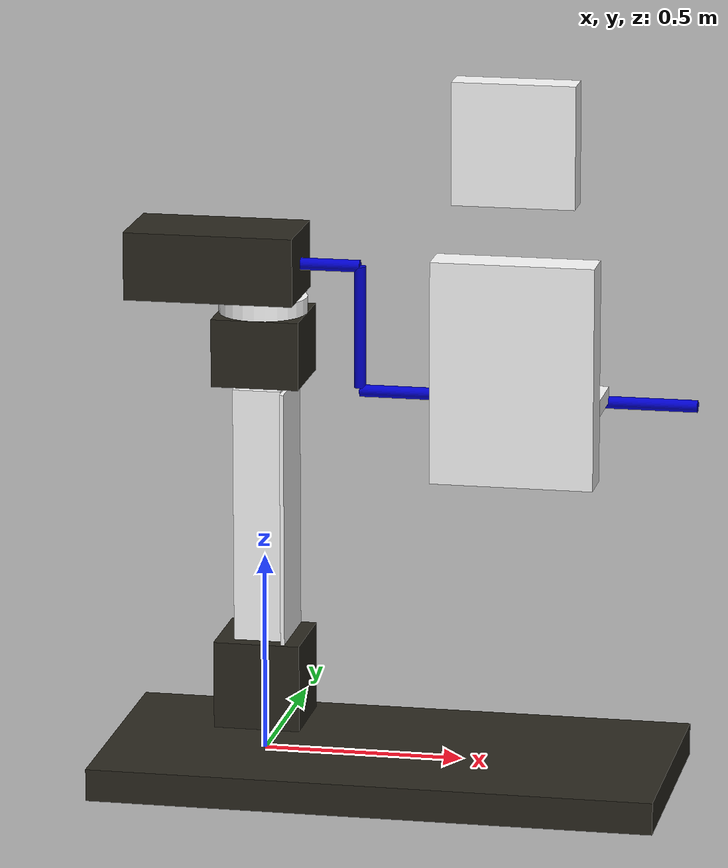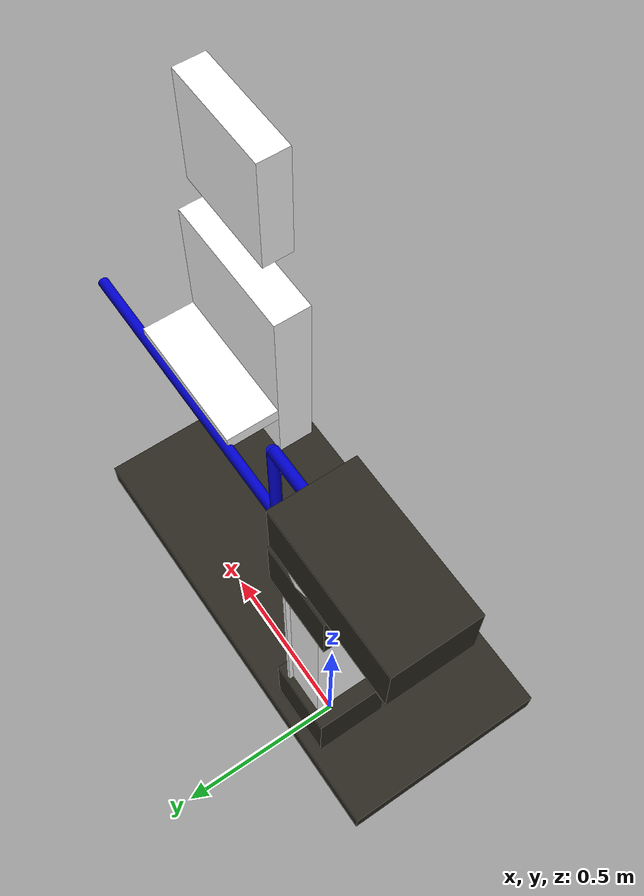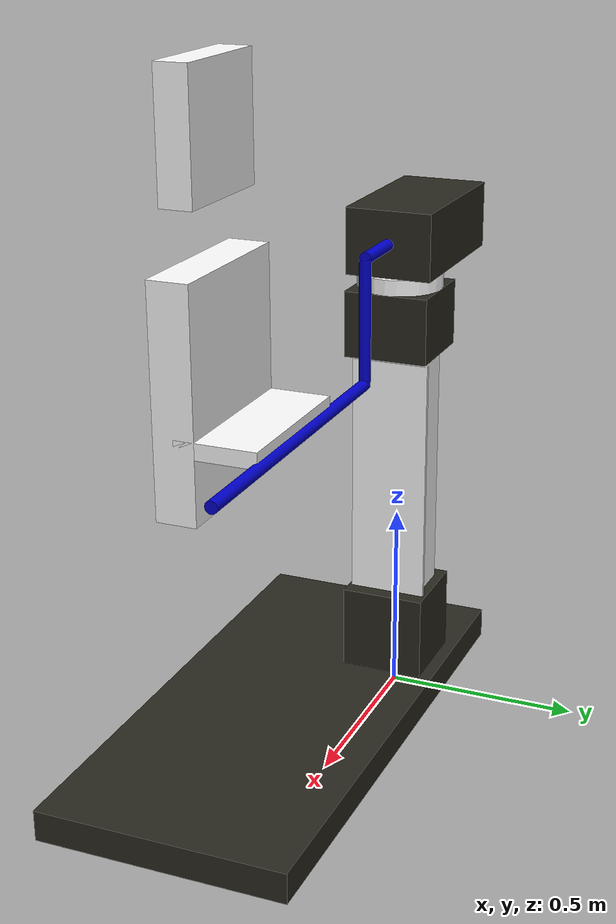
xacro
<?xml version="1.0"?>
<robot name="robot" xmlns:xacro="http://www.ros.org/wiki/xacro">

  <material name="blue">
    <color rgba="0 0 0.8 1"/>
  </material>

  <material name="red">
    <color rgba="0.7 0 0 1"/>
  </material>

  <material name="white">
    <color rgba="1 1 1 1"/>
  </material>

  <material name="brown">
    <color rgba="0.163 0.155 0.120 1"/>
  </material>

  <material name="oak">
    <color rgba="0.84375 0.70703125 0.53515625 1"/>
  </material>

  <!--define initial joint configurations-->
  <ros2_control name="GazeboSystem" type="system">
    <hardware>
      <plugin>gazebo_ros2_control/GazeboSystem</plugin>
    </hardware>
      <joint name="upper_cylinder_upper_motor_joint"> <!-- rotation joint -->
        <command_interface name="position"/>
        <command_interface name="velocity"/>
        <command_interface name="effort"/>
        <state_interface name="position">
          <param name="initial_value">0</param>
        </state_interface>
        <state_interface name="velocity"/>
        <state_interface name="effort"/>
      </joint>

      <joint name="column_outside_column_inside_joint"> <!-- height joint -->
        <command_interface name="position"/>
        <command_interface name="velocity"/>
        <command_interface name="effort"/>
        <state_interface name="position">
          <param name="initial_value">0</param>
        </state_interface>
        <state_interface name="velocity"/>
        <state_interface name="effort"/>
      </joint>

      <joint name="upper_motor_box_arm_joint">  <!-- arm rotation joint -->
        <command_interface name="position"/>
        <command_interface name="velocity"/>
        <command_interface name="effort"/>
        <state_interface name="position">
          <param name="initial_value">0</param>
        </state_interface>
        <state_interface name="velocity"/>
        <state_interface name="effort"/>
      </joint>
  </ros2_control>

  <gazebo>
    <plugin filename="libgazebo_ros2_control.so" name="gazebo_ros2_control">
      <parameters>$(find gazebo_simulation)/config/controller_manager.yaml</parameters>
    </plugin>
    <plugin name="gazebo_ros_force_system" filename="libgazebo_ros_force_system.so">
    </plugin>
  </gazebo>

  <!-- The Robot Description starts here:-->
  <link name="robot_base"/>

  <joint name = "map_frame_joint" type = "fixed">
    <origin xyz="0.35575 -0.180 0"/>
    <parent link = "robot_base" />
    <child link = "frame_link" />
  </joint>

  <!-- Base frame -->
  <link name="frame_link">
    <visual>
      <origin xyz="0 0 0.040" />
      <geometry>
        <box size="1.395 0.645 0.080"/>
      </geometry>
      <material name="brown"/>
    </visual>
    <collision>
      <origin xyz="0 0 0.040" />
      <geometry>
        <box size="1.395 0.645 0.080"/>
      </geometry>
    </collision>
    <inertial>
      <xacro:property name="frame_link_mass" value="20000.0"/> <!-- specially high to stabilize-->
      <mass value="${frame_link_mass}"/>
      <origin xyz="0 0 0.040" />
      <inertia
        ixx="${frame_link_mass / 12.0 * (0.645*0.645 + 0.080*0.080)}"
        iyy="${frame_link_mass / 12.0 * (1.395*1.395 + 0.080*0.080)}"
        izz="${frame_link_mass / 12.0 * (1.395*1.395 + 0.645*0.645)}"
        ixy="0" ixz="0" iyz="0"/>
    </inertial>
  </link>

  <joint name = "frame_lower_motor_box_joint" type = "fixed">
    <origin xyz="-0.35575 0.180 0.080"/>
    <parent link = "frame_link" />
    <child link = "lower_motor_box_link" />
  </joint>

  <!-- lower motor box -->
  <link name="lower_motor_box_link">
    <visual>
      <origin xyz="0 0 0.110"/>
      <geometry>
        <box size="0.2165 0.218 0.220"/>
      </geometry>
      <material name="brown"/>
    </visual>
    <collision>
      <origin xyz="0 0 0.110"/>
      <geometry>
        <box size="0.2165 0.218 0.220"/>
      </geometry>
    </collision>
    <inertial>
      <xacro:property name="lower_motor_box_mass" value="28.0"/> <!-- mass of the lower motor box AND the outside column (see mass property of outside column for explanation) -->
      <mass value="${lower_motor_box_mass}"/>
      <origin xyz="0 0 0.110" />
      <inertia
        ixx="${lower_motor_box_mass / 12.0 * (0.218*0.218 + 0.220*0.220)}"
        iyy="${lower_motor_box_mass / 12.0 * (0.2165*0.2165 + 0.220*0.220)}"
        izz="${lower_motor_box_mass / 12.0 * (0.2165*0.2165 + 0.218*0.218)}"
        ixy="0" ixz="0" iyz="0"/>
    </inertial>
  </link>

  <joint name = "lower_motor_box_column_outside_joint" type = "fixed">
    <origin xyz="0 0 0.220"/>
    <parent link = "lower_motor_box_link" />
    <child link = "column_outside_link" />
  </joint>

  <!-- lifting_column_outside -->
  <link name="column_outside_link">
    <visual>
      <origin xyz="0.065 0 0.320"/>
      <geometry>
        <box size="0.010 0.202 0.640"/>
      </geometry>
      <material name="white"/>
    </visual>
    <collision>
      <origin xyz="0.065 0 0.320"/>
      <geometry>
        <box size="0.010 0.202 0.640"/>
      </geometry>
    </collision>
    <inertial>
      <xacro:property name="column_outside_mass" value="0.5"/>
      <mass value="${column_outside_mass}"/>
      <origin xyz="0.065 0 0.320"/>
      <inertia
        ixx="${column_outside_mass / 12.0 * (0.202*0.202 + 0.640*0.640)}"
        iyy="${column_outside_mass / 12.0 * (0.010*0.010 + 0.640*0.640)}"
        izz="${column_outside_mass / 12.0 * (0.010*0.010 + 0.202*0.202)}"
        ixy="0" ixz="0" iyz="0"/>
    </inertial>
  </link>

  <joint name = "column_outside_column_inside_joint" type = "prismatic">
    <origin xyz="0 0 0.005"/>
    <parent link = "column_outside_link" />
    <child link = "column_inside_link" />
    <axis xyz="0 0 1" />
    <dynamics damping="0.5" friction="1.1"/>
    <limit lower="0" upper="50.0" velocity="100" effort="5000"/>
  </joint>

  <!-- lifting_column_inside -->
  <link name="column_inside_link">
    <visual>
      <origin xyz="0 0 0.320"/>
      <geometry>
        <box size="0.120 0.177 0.640"/>
      </geometry>
      <material name="white"/>
    </visual>
    <collision>
      <origin xyz="0 0 0.320"/>
      <geometry>
        <box size="0.120 0.177 0.640"/>
      </geometry>
    </collision>
    <inertial>
      <xacro:property name="column_inside_mass" value="9.0"/>
      <mass value="${column_inside_mass}"/>
      <origin xyz="0 0 0.320"/>
      <inertia
        ixx="${column_inside_mass / 12.0 * (0.177*0.177 + 0.640*0.640)}"
        iyy="${column_inside_mass / 12.0 * (0.120*0.120 + 0.640*0.640)}"
        izz="${column_inside_mass / 12.0 * (0.120*0.120 + 0.177*0.177)}"
        ixy="0" ixz="0" iyz="0"/>
    </inertial>
  </link>

  <joint name = "column_inside_joint" type = "fixed">
    <origin xyz="0 0 0.650"/>
    <parent link = "column_inside_link" />
    <child link = "middle_motor_box_link" />
  </joint>

  <!-- middle motor box  -->
  <link name="middle_motor_box_link">
    <visual>
      <origin xyz="0 0 0.085"/>
      <geometry>
        <box size="0.218 0.218 0.170"/>
      </geometry>
      <material name="brown"/>
    </visual>
    <collision>
      <origin xyz="0 0 0.085"/>
      <geometry>
        <box size="0.218 0.218 0.170"/>
      </geometry>
    </collision>
    <inertial>
      <xacro:property name="middle_motor_box_mass" value="19.0"/>
      <mass value="${middle_motor_box_mass}"/>
      <origin xyz="0 0 0.085"/>
      <inertia
        ixx="${middle_motor_box_mass / 12.0 * (0.218*0.218 + 0.170*0.170)}"
        iyy="${middle_motor_box_mass / 12.0 * (0.218*0.218 + 0.170*0.170)}"
        izz="${middle_motor_box_mass / 12.0 * (0.218*0.218 + 0.218*0.218)}"
        ixy="0" ixz="0" iyz="0"/>
    </inertial>
  </link>

  <joint name = "middle_box_upper_cylinder_joint" type = "fixed">
    <origin xyz="0 0 0.170"/>
    <parent link = "middle_motor_box_link" />
    <child link = "upper_cylinder_link" />
  </joint>

  <!-- cylinder connecting upper boxes -->
  <link name="upper_cylinder_link">
    <visual>
      <origin xyz="0 0 0.020"/>
      <geometry>
        <cylinder length="0.040" radius="0.110"/>
      </geometry>
      <material name="white"/>
    </visual>
    <collision>
      <origin xyz="0 0 0.020"/>
      <geometry>
        <cylinder length="0.040" radius="0.110"/>
      </geometry>
    </collision>
    <inertial>
      <xacro:property name="upper_cylinder_mass" value="1.0"/>
      <mass value="${upper_cylinder_mass}"/>
      <origin xyz="0 0 0.020"/>
      <inertia
        ixx="${upper_cylinder_mass / 12.0 * (3*0.110*0.110 + 0.040*0.040)}"
        iyy="${upper_cylinder_mass / 12.0 * (3*0.110*0.110 + 0.040*0.040)}"
        izz="${upper_cylinder_mass / 2.0 * (0.110*0.110)}"
        ixy="0" ixz="0" iyz="0"/>
    </inertial>
  </link>

  <joint name = "upper_cylinder_upper_motor_joint" type = "continuous">
    <origin xyz="0 0 0.040"/>
    <parent link = "upper_cylinder_link" />
    <child link = "upper_motor_box_link" />
    <dynamics damping="0.5" friction="0.1"/>
    <axis xyz="0 0 1" />
  </joint>

  <!-- upper motor box -->
  <link name="upper_motor_box_link">
    <visual>
      <origin xyz="-0.11575 0 0.08475"/>
      <geometry>
        <box size="0.4215 0.223 0.1695"/>
      </geometry>
      <material name="brown"/>
    </visual>
    <collision>
      <origin xyz="-0.11575 0 0.08475"/>
      <geometry>
        <box size="0.4215 0.223 0.1695"/>
      </geometry>
    </collision>
    <inertial>
      <xacro:property name="upper_motor_box_mass" value="22.0"/>
      <mass value="${upper_motor_box_mass}"/>
      <origin xyz="-0.11575 0 0.08475"/>
      <inertia
        ixx="${upper_motor_box_mass / 12.0 * (0.223*0.223 + 0.1695*0.1695)}"
        iyy="${upper_motor_box_mass / 12.0 * (0.4215*0.4215 + 0.1695*0.1695)}"
        izz="${upper_motor_box_mass / 12.0 * (0.4215*0.4215 + 0.223*0.223)}"
        ixy="0" ixz="0" iyz="0"/>
    </inertial>
  </link>

  <joint name="upper_motor_box_arm_joint" type="continuous">
    <parent link="upper_motor_box_link"/>
    <child link="arm_first_link"/>
    <origin xyz="0.095 0 0.08475" rpy="0 -1.57079 3.1415926"/>
    <dynamics damping="0.5" friction="0.1"/>
    <axis xyz="0 0 1" rpy="0 0 0"/>
  </joint>

  <!-- arm_first_link -->
  <link name="arm_first_link">
    <visual>
      <origin xyz="0 0 0.074" rpy="0 0 0" />
      <geometry>
        <cylinder length="0.148" radius="0.015"/>
      </geometry>
      <material name="blue"/>
    </visual>
    <collision>
      <origin xyz="0 0 0.074" rpy="0 0 0" />
      <geometry>
        <cylinder length="0.148" radius="0.015"/>
      </geometry>
    </collision>
    <inertial>
      <xacro:property name="arm_first_mass" value="1.5"/>
      <mass value="${arm_first_mass}"/>
      <origin xyz="0 0 0.074" rpy="0 0 0" />
      <inertia
        ixx="${arm_first_mass / 12.0 * (3*0.015*0.015 + 0.148*0.148)}"
        iyy="${arm_first_mass / 12.0 * (3*0.015*0.015 + 0.148*0.148)}"
        izz="${arm_first_mass / 2.0 * (0.015*0.015)}"
        ixy="0" ixz="0" iyz="0"/>
    </inertial>
  </link>

  <joint name="arm_first_joint" type="fixed">
    <parent link="arm_first_link"/>
    <child link="arm_second_link"/>
    <origin xyz="0 0 0.148" rpy="0 -1.5708 0"/>
  </joint>

  <!-- arm_second_link -->
  <link name="arm_second_link">
    <visual>
      <origin xyz="0 0 0.153" rpy="0 0 0"/>
      <geometry>
        <cylinder length="0.306" radius="0.015"/>
      </geometry>
      <material name="blue"/>
    </visual>
    <collision>
      <origin xyz="0 0 0.153" rpy="0 0 0"/>
      <geometry>
        <cylinder length="0.306" radius="0.015"/>
      </geometry>
    </collision>
    <inertial>
      <xacro:property name="arm_second_mass" value="0.5"/>
      <mass value="${arm_second_mass}"/>
      <origin xyz="0 0 0.153" rpy="0 0 0"/>
      <inertia
        ixx="${arm_second_mass / 12.0 * (3*0.015*0.015 + 0.306*0.306)}"
        iyy="${arm_second_mass / 12.0 * (3*0.015*0.015 + 0.306*0.306)}"
        izz="${arm_second_mass / 2.0 * (0.015*0.015)}"
        ixy="0" ixz="0" iyz="0"/>
    </inertial>
  </link>

  <joint name="arm_second_joint" type="fixed">
    <parent link="arm_second_link"/>
    <child link="arm_third_link"/>
    <origin xyz="0 0 0.314" rpy="0 1.5708 0"/>
  </joint>

  <!-- arm_third_link -->
  <link name="arm_third_link">
    <visual>
      <origin xyz="0 0 0.419"/>
      <geometry>
        <cylinder length="0.838" radius="0.015"/>
      </geometry>
      <material name="blue"/>
    </visual>
    <collision>
      <origin xyz="0 0 0.419"/>
      <geometry>
        <cylinder length="0.838" radius="0.015"/>
      </geometry>
    </collision>
    <inertial>
      <xacro:property name="arm_third_mass" value="2.5"/>
      <mass value="${arm_third_mass}"/>
      <origin xyz="0 0 0.419"/>
      <inertia
        ixx="${arm_third_mass / 12.0 * (3*0.015*0.015 + 0.838*0.838)}"
        iyy="${arm_third_mass / 12.0 * (3*0.015*0.015 + 0.838*0.838)}"
        izz="${arm_third_mass / 2.0 * (0.015*0.015)}"
        ixy="0" ixz="0" iyz="0"/>
    </inertial>
  </link>

  <joint name="robot_Body_joint" type="continuous">
    <parent link="arm_third_link"/>
    <child link="BodyArms_link"/>
    <origin xyz="0.015 0 0.419" rpy="0 1.5708 0"/>
    <dynamics damping="0.5" friction="0.1"/>
    <axis xyz="1 0 0" />
  </joint>

  <!-- BodyArms -->
  <link name="BodyArms_link">
    <visual>
      <origin xyz="0 0.100 0.005"/>
      <geometry>
        <box size="0.400 0.200 0.040"/>
      </geometry>
      <material name="white"/>
    </visual>
    <collision>
      <origin xyz="0 0.100 0.005"/>
      <geometry>
        <box size="0.400 0.200 0.040"/>
      </geometry>
    </collision>
    <inertial>
      <xacro:property name="body_arms_mass" value="9.0"/>
      <mass value="${body_arms_mass}"/>
      <origin xyz="0 0.100 0.005"/>
      <inertia
        ixx="${body_arms_mass / 12.0 * (0.200*0.200 + 0.040*0.040)}"
        iyy="${body_arms_mass / 12.0 * (0.400*0.400 + 0.040*0.040)}"
        izz="${body_arms_mass / 12.0 * (0.400*0.400 + 0.200*0.200)}"
        ixy="0" ixz="0" iyz="0"/>
    </inertial>
  </link>

  <joint name = "BodyArms_UpperBody_joint" type = "fixed">
    <origin xyz="0 0.200 -0.100"/>
    <parent link = "BodyArms_link" />
    <child link = "UpperBody_link" />
  </joint>

  <!-- UpperBody -->
  <link name="UpperBody_link">
    <visual>
      <origin xyz="0 0 0.20"/>
      <geometry>
        <box size="0.400 0.100 0.550"/>
      </geometry>
      <material name="white"/>
    </visual>
    <collision>
      <origin xyz="0 0 0.20"/>
      <geometry>
        <box size="0.400 0.100 0.550"/>
      </geometry>
    </collision>
    <inertial>
      <xacro:property name="upper_body_mass" value="50.0"/>
      <mass value="${upper_body_mass}"/>
      <origin xyz="0 0 0.20"/>
      <inertia
        ixx="${upper_body_mass / 12.0 * (0.100*0.100 + 0.550*0.550)}"
        iyy="${upper_body_mass / 12.0 * (0.400*0.400 + 0.550*0.550)}"
        izz="${upper_body_mass / 12.0 * (0.400*0.400 + 0.100*0.100)}"
        ixy="0" ixz="0" iyz="0"/>
    </inertial>
  </link>

  <joint name="Upper_Lower_Body_joint" type="revolute">
    <parent link="UpperBody_link"/>
    <child link="LowerBody_link"/>
    <origin xyz="0 0 0.490" rpy="0 0 0"/>
    <dynamics damping="0.5" friction="0.1"/>
    <axis xyz="1 0 0" />
    <limit lower="-0.5708" upper="2.00" velocity="1000" effort="500000"/>
  </joint>

  <!-- LowerBody -->
  <link name="LowerBody_link">
    <visual>
      <origin xyz="0 0 0.275"/>
      <geometry>
        <box size="0.300 0.080 0.30"/>
      </geometry>
      <material name="white"/>
    </visual>
    <collision>
      <origin xyz="0 0 0"/>
      <geometry>
        <box size="0.300 0.080 0.30"/>
      </geometry>
    </collision>
    <inertial>
      <xacro:property name="lower_body_mass" value="0.0"/>
      <mass value="${lower_body_mass}"/>
      <origin xyz="0 0 0.275"/>
      <inertia
        ixx="${lower_body_mass / 12.0 * (0.080*0.080 + 0.550*0.550)}"
        iyy="${lower_body_mass / 12.0 * (0.300*0.300 + 0.550*0.550)}"
        izz="${lower_body_mass / 12.0 * (0.300*0.300 + 0.080*0.080)}"
        ixy="0" ixz="0" iyz="0"/>
    </inertial>
  </link>

  <joint name="end_effector_joint" type="fixed">
    <parent link="arm_third_link"/>
    <child link="end_effector"/>
    <origin xyz="0 0 0.838" rpy="0 -1.5708 0"/>
  </joint>

  <link name="end_effector" />

  <!-- Gazebo material references. only for color purposes -->
  <gazebo reference="frame_link">
    <material>Gazebo/Grey</material>
  </gazebo>

  <gazebo reference="lower_motor_box_link">
    <material>Gazebo/Grey</material>
  </gazebo>

  <gazebo reference="middle_motor_box_link">
    <material>Gazebo/Grey</material>
  </gazebo>

  <gazebo reference="upper_motor_box_link">
    <material>Gazebo/Grey</material>
  </gazebo>

  <gazebo reference="column_outside_link">
    <material>Gazebo/White</material>
  </gazebo>

  <gazebo reference="BodyArms_link">
    <material>Gazebo/White</material>
  </gazebo>

  <gazebo reference="UpperBody_link">
    <material>Gazebo/White</material>
  </gazebo>

  <gazebo reference="Bed_center_link">
    <material>Gazebo/White</material>
  </gazebo>

  <gazebo reference="column_inside_link">
    <material>Gazebo/White</material>
  </gazebo>

  <gazebo reference="upper_cylinder_link">
    <material>Gazebo/White</material>
  </gazebo>

  <gazebo reference="arm_first_link">
    <material>Gazebo/Blue</material>
  </gazebo>

  <gazebo reference="arm_second_link">
    <material>Gazebo/Blue</material>
  </gazebo>

  <gazebo reference="arm_third_link">
    <material>Gazebo/Blue</material>
  </gazebo>

</robot>
